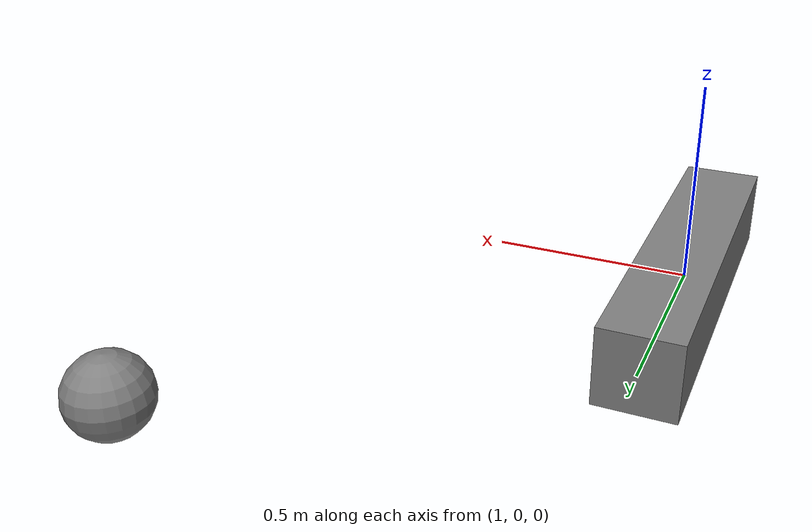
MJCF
<mujoco model="invalid names">
    <compiler meshdir="assets"/>
    <asset>
        <material name="Material 1" rgba="1 0 0 1"/>
        <mesh name="Mesh 1" file="box.stl"/>
        <mesh name="Mesh 2" file="box.obj"/>
    </asset>
    <worldbody>
    <body name="Body 1">
        <geom name="Geom 1" type="box" size="0.1 0.5 0.1" pos="1 0 0"/>
        <body name="Body 2" pos="1 0 0">
            <joint name="Joint 1" type="hinge" axis="0 1 0"/>
            <geom name="Geom 2" type="sphere" size="0.1" pos="1 1 0"/>
        </body>
    </body>
    </worldbody>
</mujoco>
